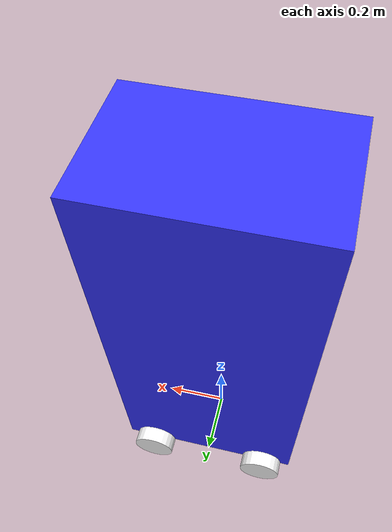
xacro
<?xml version="1.0"?>
<robot xmlns:xacro="http://www.ros.org/wiki/xacro"  name="robot">
    <!-- Main URDF file for Differential Drive Robot -->

    <!-- Include general xacro files -->
    <xacro:include filename="common.xacro"/>

    <!-- Robot Variables -->
    <xacro:property name="chassis_length" value="0.6"/>
    <xacro:property name="chassis_width" value="0.4"/>
    <xacro:property name="chassis_height" value="1.2"/>
    <xacro:property name="chassis_mass" value="22.2"/>
    <xacro:property name="wheel_radius" value="0.07"/>
    <xacro:property name="wheel_thickness" value="0.05"/>
    <xacro:property name="wheel_mass" value="0.2"/>
    <xacro:property name="wheel_offset_x" value="0.2"/>
    <xacro:property name="wheel_offset_y" value="${chassis_width/2 + wheel_thickness/2}"/>
    <xacro:property name="wheel_offset_z" value="0.0"/>

    <!-- Base Link -->
    <link name="base_link"></link>

    <!-- Base Footprint -->
    <joint name="base_footprint_joint" type="fixed">
        <parent link="base_link"/>
        <child link="base_footprint"/>
        <origin xyz="0 0 0" rpy="0 0 0"/>
    </joint>
    <link name="base_footprint"></link>

    <!-- Chassis -->
    <joint name="chassis_joint" type="fixed">
        <parent link="base_link"/>
        <child link="chassis_link"/>
        <origin xyz="0 0 0"/>
    </joint>
    <link name="chassis_link">
        <visual>
            <origin xyz="0 0 ${chassis_height/2}"/>
            <geometry>
                <box size="${chassis_length} ${chassis_width} ${chassis_height}"/>
            </geometry>
            <material name="blue"/>
        </visual>
        <collision>
            <origin xyz="0 0 ${chassis_height/2}"/>
            <geometry>
                <box size="${chassis_length} ${chassis_width} ${chassis_height}"/>
            </geometry>
        </collision>
        <xacro:inertial_box mass="0.5" x="${chassis_length}" y="${chassis_width}" z="${chassis_height}">
            <origin xyz="0 0 ${chassis_height/2}" rpy="0 0 0"/>
        </xacro:inertial_box>
    </link>

    <!-- Front Left Wheel -->
    <joint name="front_left_wheel_joint" type="continuous">
        <parent link="base_link"/>
        <child link="front_left_wheel"/>
        <origin xyz="${wheel_offset_x} ${wheel_offset_y} 0" rpy="-${pi/2} 0 0" />
        <axis xyz="0 0 1"/>
    </joint>
    <link name="front_left_wheel">
        <visual>
            <geometry>
                <cylinder radius="${wheel_radius}" length="${wheel_thickness}"/>
            </geometry>
            <material name="white"/>
        </visual>
        <collision>
            <geometry>
                <sphere radius="${wheel_radius}"/>
            </geometry>
        </collision>
        <xacro:inertial_cylinder mass="${wheel_mass}" length="${wheel_thickness}" radius="${wheel_radius}">
            <origin xyz="0 0 0" rpy="0 0 0"/>
        </xacro:inertial_cylinder>
    </link>

    <!-- Front Right Wheel -->
    <joint name="front_right_wheel_joint" type="continuous">
        <parent link="base_link"/>
        <child link="front_right_wheel"/>
        <origin xyz="${wheel_offset_x} ${-wheel_offset_y} 0" rpy="${pi/2} 0 0" />
        <axis xyz="0 0 -1"/>
    </joint>
    <link name="front_right_wheel">
        <visual>
            <geometry>
                <cylinder radius="${wheel_radius}" length="${wheel_thickness}"/>
            </geometry>
            <material name="white"/>
        </visual>
        <collision>
            <geometry>
                <sphere radius="${wheel_radius}"/>
            </geometry>
        </collision>
        <xacro:inertial_cylinder mass="${wheel_mass}" length="${wheel_thickness}" radius="${wheel_radius}">
            <origin xyz="0 0 0" rpy="0 0 0"/>
        </xacro:inertial_cylinder>
    </link>

    <!-- Rear Left Wheel -->
    <joint name="rear_left_wheel_joint" type="continuous">
        <parent link="base_link"/>
        <child link="rear_left_wheel"/>
        <origin xyz="${-wheel_offset_x} ${wheel_offset_y} 0" rpy="-${pi/2} 0 0" />
        <axis xyz="0 0 1"/>
    </joint>
    <link name="rear_left_wheel">
        <visual>
            <geometry>
                <cylinder radius="${wheel_radius}" length="${wheel_thickness}"/>
            </geometry>
            <material name="white"/>
        </visual>
        <collision>
            <geometry>
                <sphere radius="${wheel_radius}"/>
            </geometry>
        </collision>
        <xacro:inertial_cylinder mass="${wheel_mass}" length="${wheel_thickness}" radius="${wheel_radius}">
            <origin xyz="0 0 0" rpy="0 0 0"/>
        </xacro:inertial_cylinder>
    </link>

    <!-- Rear Right Wheel -->
    <joint name="rear_right_wheel_joint" type="continuous">
        <parent link="base_link"/>
        <child link="rear_right_wheel"/>
        <origin xyz="${-wheel_offset_x} ${-wheel_offset_y} 0" rpy="${pi/2} 0 0" />
        <axis xyz="0 0 -1"/>
    </joint>
    <link name="rear_right_wheel">
        <visual>
            <geometry>
                <cylinder radius="${wheel_radius}" length="${wheel_thickness}"/>
            </geometry>
            <material name="white"/>
        </visual>
        <collision>
            <geometry>
                <sphere radius="${wheel_radius}"/>
            </geometry>
        </collision>
        <xacro:inertial_cylinder mass="${wheel_mass}" length="${wheel_thickness}" radius="${wheel_radius}">
            <origin xyz="0 0 0" rpy="0 0 0"/>
        </xacro:inertial_cylinder>
    </link>

    <!-- Gazebo -->
    <gazebo reference="chassis_link">
        <material>Gazebo/Blue</material>
    </gazebo>

    <gazebo reference="front_left_wheel">
        <material>Gazebo/White</material>
    </gazebo>

    <gazebo reference="front_right_wheel">
        <material>Gazebo/White</material>
    </gazebo>

    <gazebo reference="rear_left_wheel">
        <material>Gazebo/White</material>
    </gazebo>

    <gazebo reference="rear_right_wheel">
        <material>Gazebo/White</material>
    </gazebo>

</robot>

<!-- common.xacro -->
<robot xmlns:xacro="http://www.ros.org/wiki/xacro" >
    <!-- This file contains the macros used across the URDF files -->

    <!-- Inertial Macros -->
    <!-- Inertial Sphere Macros -->
    <xacro:macro name="inertial_sphere" params="mass radius *origin">
        <inertial>
            <xacro:insert_block name="origin"/>
            <mass value="${mass}" />
            <inertia ixx="${(2/5) * mass * (radius*radius)}" ixy="0.0" ixz="0.0"
                    iyy="${(2/5) * mass * (radius*radius)}" iyz="0.0"
                    izz="${(2/5) * mass * (radius*radius)}" />
        </inertial>
    </xacro:macro>
    <!-- Inertial Box Macros -->
    <xacro:macro name="inertial_box" params="mass x y z *origin">
        <inertial>
            <xacro:insert_block name="origin"/>
            <mass value="${mass}" />
            <inertia ixx="${(1/12) * mass * (y*y+z*z)}" ixy="0.0" ixz="0.0"
                    iyy="${(1/12) * mass * (x*x+z*z)}" iyz="0.0"
                    izz="${(1/12) * mass * (x*x+y*y)}" />
        </inertial>
    </xacro:macro>
    <!-- Inertial Cylinder Macros -->
    <xacro:macro name="inertial_cylinder" params="mass length radius *origin">
        <inertial>
            <xacro:insert_block name="origin"/>
            <mass value="${mass}" />
            <inertia ixx="${(1/12) * mass * (3*radius*radius + length*length)}" ixy="0.0" ixz="0.0"
                    iyy="${(1/12) * mass * (3*radius*radius + length*length)}" iyz="0.0"
                    izz="${(1/2) * mass * (radius*radius)}" />
        </inertial>
    </xacro:macro>

    <!-- Material Macros -->
    <material name="white">
        <color rgba="1 1 1 1" />
    </material>

    <material name="orange">
        <color rgba="1 0.3 0.1 1"/>
    </material>

    <material name="blue">
        <color rgba="0.2 0.2 1 1"/>
    </material>

    <material name="black">
        <color rgba="0 0 0 1"/>
    </material>

    <material name="red">
        <color rgba="1 0 0 1"/>
    </material>

    <material name="grey">
        <color rgba="0.5 0.5 0.5 1.0"/>
    </material>

    <material name="purple">
        <color rgba="0.78 0.153 0.71 1"/>
    </material>

    <material name="green">
        <color rgba="0.149 0.612 0.082 1"/>
    </material>
</robot>
